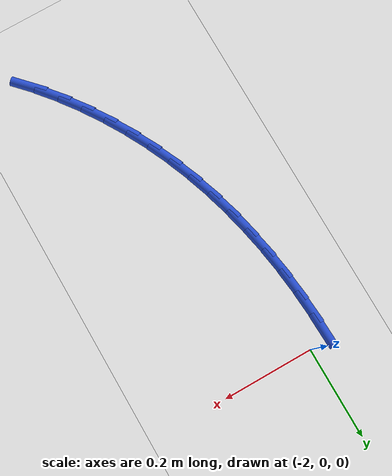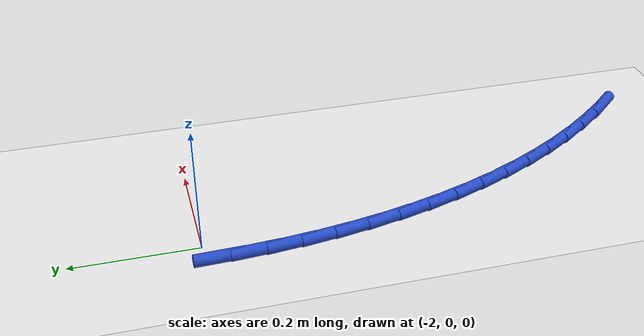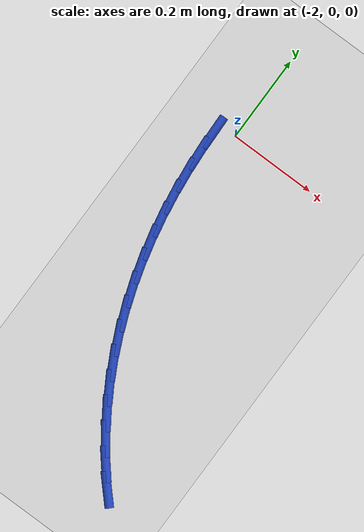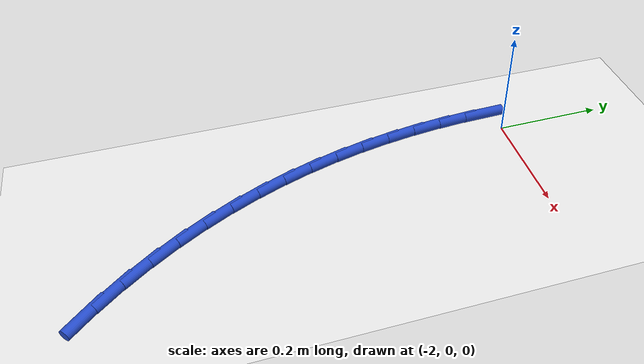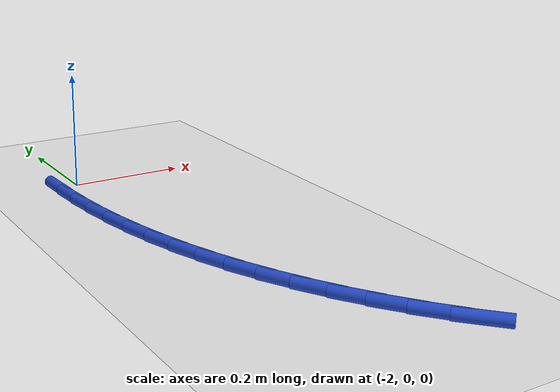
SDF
<sdf version="1.6">
 <world name="default">
  <model name="ground_plane">
   <static>1</static>
   <link name="link">
    <collision name="collision">
     <geometry><plane><normal>0 0 1</normal><size>100 100</size></plane></geometry>
     <surface><friction><ode><mu>100</mu><mu2>50</mu2></ode></friction></surface>
    </collision>
    <visual name="visual">
     <cast_shadows>0</cast_shadows>
     <geometry><plane><normal>0 0 1</normal><size>100 100</size></plane></geometry>
     <material>
      <script><uri>file://media/materials/scripts/gazebo.material</uri><name>Gazebo/WhiteGlow</name></script>
     </material>
    </visual>
   </link>
  </model>
  <model name="line">
   <link name="link_60">
    <pose>-2.0421835619305737 -0.0218428431717213 0.01 0 1.57 -1.5364353345822712</pose>
    <collision name="collision">
     <geometry><cylinder><radius>0.01</radius><length>0.08</length></cylinder></geometry>
    </collision>
    <visual name="visual">
     <material>
      <script><name>Gazebo/Blue</name><uri>file://media/materials/scripts/gazebo.material</uri></script>
     </material>
     <geometry><cylinder><radius>0.01</radius><length>0.08</length></cylinder></geometry>
    </visual>
   </link>
   <link name="link_61">
    <pose>-2.040297844113137 -0.07670085209178246 0.01 0 1.57 -1.49704273864362</pose>
    <collision name="collision">
     <geometry><cylinder><radius>0.01</radius><length>0.08</length></cylinder></geometry>
    </collision>
    <visual name="visual">
     <material>
      <script><name>Gazebo/Blue</name><uri>file://media/materials/scripts/gazebo.material</uri></script>
     </material>
     <geometry><cylinder><radius>0.01</radius><length>0.08</length></cylinder></geometry>
    </visual>
   </link>
   <link name="link_62">
    <pose>-2.0362647465696653 -0.13128507219147836 0.01 0 1.57 -1.4564170986292473</pose>
    <collision name="collision">
     <geometry><cylinder><radius>0.01</radius><length>0.08</length></cylinder></geometry>
    </collision>
    <visual name="visual">
     <material>
      <script><name>Gazebo/Blue</name><uri>file://media/materials/scripts/gazebo.material</uri></script>
     </material>
     <geometry><cylinder><radius>0.01</radius><length>0.08</length></cylinder></geometry>
    </visual>
   </link>
   <link name="link_63">
    <pose>-2.0300359076498986 -0.18550516220599242 0.01 0 1.57 -1.4144914595809464</pose>
    <collision name="collision">
     <geometry><cylinder><radius>0.01</radius><length>0.08</length></cylinder></geometry>
    </collision>
    <visual name="visual">
     <material>
      <script><name>Gazebo/Blue</name><uri>file://media/materials/scripts/gazebo.material</uri></script>
     </material>
     <geometry><cylinder><radius>0.01</radius><length>0.08</length></cylinder></geometry>
    </visual>
   </link>
   <link name="link_64">
    <pose>-2.021562965703574 -0.2392707808705057 0.01 0 1.57 -1.3712111930286497</pose>
    <collision name="collision">
     <geometry><cylinder><radius>0.01</radius><length>0.08</length></cylinder></geometry>
    </collision>
    <visual name="visual">
     <material>
      <script><name>Gazebo/Blue</name><uri>file://media/materials/scripts/gazebo.material</uri></script>
     </material>
     <geometry><cylinder><radius>0.01</radius><length>0.08</length></cylinder></geometry>
    </visual>
   </link>
   <link name="link_65">
    <pose>-2.0107975590804323 -0.2924915869202018 0.01 0 1.57 -1.3265369349799083</pose>
    <collision name="collision">
     <geometry><cylinder><radius>0.01</radius><length>0.08</length></cylinder></geometry>
    </collision>
    <visual name="visual">
     <material>
      <script><name>Gazebo/Blue</name><uri>file://media/materials/scripts/gazebo.material</uri></script>
     </material>
     <geometry><cylinder><radius>0.01</radius><length>0.08</length></cylinder></geometry>
    </visual>
   </link>
   <link name="link_66">
    <pose>-1.99769132613021 -0.3450772390902639 0.01 0 1.57 -1.2804477875442704</pose>
    <collision name="collision">
     <geometry><cylinder><radius>0.01</radius><length>0.08</length></cylinder></geometry>
    </collision>
    <visual name="visual">
     <material>
      <script><name>Gazebo/Blue</name><uri>file://media/materials/scripts/gazebo.material</uri></script>
     </material>
     <geometry><cylinder><radius>0.01</radius><length>0.08</length></cylinder></geometry>
    </visual>
   </link>
   <link name="link_67">
    <pose>-1.9821959052026485 -0.3969373961158733 0.01 0 1.57 -1.232944652979665</pose>
    <collision name="collision">
     <geometry><cylinder><radius>0.01</radius><length>0.08</length></cylinder></geometry>
    </collision>
    <visual name="visual">
     <material>
      <script><name>Gazebo/Blue</name><uri>file://media/materials/scripts/gazebo.material</uri></script>
     </material>
     <geometry><cylinder><radius>0.01</radius><length>0.08</length></cylinder></geometry>
    </visual>
   </link>
   <link name="link_68">
    <pose>-1.9642629346474842 -0.4479817167322135 0.01 0 1.57 -1.1840535102107554</pose>
    <collision name="collision">
     <geometry><cylinder><radius>0.01</radius><length>0.08</length></cylinder></geometry>
    </collision>
    <visual name="visual">
     <material>
      <script><name>Gazebo/Blue</name><uri>file://media/materials/scripts/gazebo.material</uri></script>
     </material>
     <geometry><cylinder><radius>0.01</radius><length>0.08</length></cylinder></geometry>
    </visual>
   </link>
   <link name="link_69">
    <pose>-1.943844052814458 -0.498119859674467 0.01 0 1.57 -1.1338283845030774</pose>
    <collision name="collision">
     <geometry><cylinder><radius>0.01</radius><length>0.08</length></cylinder></geometry>
    </collision>
    <visual name="visual">
     <material>
      <script><name>Gazebo/Blue</name><uri>file://media/materials/scripts/gazebo.material</uri></script>
     </material>
     <geometry><cylinder><radius>0.01</radius><length>0.08</length></cylinder></geometry>
    </visual>
   </link>
   <link name="link_70">
    <pose>-1.9208908980616437 -0.5472614836721037 0.01 0 1.57 -1.08256803882214</pose>
    <collision name="collision">
     <geometry><cylinder><radius>0.01</radius><length>0.08</length></cylinder></geometry>
    </collision>
    <visual name="visual">
     <material>
      <script><name>Gazebo/Blue</name><uri>file://media/materials/scripts/gazebo.material</uri></script>
     </material>
     <geometry><cylinder><radius>0.01</radius><length>0.08</length></cylinder></geometry>
    </visual>
   </link>
   <link name="link_71">
    <pose>-1.8953758724112078 -0.5953020182782508 0.01 0 1.57 -1.0310727611489976</pose>
    <collision name="collision">
     <geometry><cylinder><radius>0.01</radius><length>0.08</length></cylinder></geometry>
    </collision>
    <visual name="visual">
     <material>
      <script><name>Gazebo/Blue</name><uri>file://media/materials/scripts/gazebo.material</uri></script>
     </material>
     <geometry><cylinder><radius>0.01</radius><length>0.08</length></cylinder></geometry>
    </visual>
   </link>
   <link name="link_72">
    <pose>-1.8673526013210187 -0.6420812312618407 0.01 0 1.57 -0.9793105991770824</pose>
    <collision name="collision">
     <geometry><cylinder><radius>0.01</radius><length>0.08</length></cylinder></geometry>
    </collision>
    <visual name="visual">
     <material>
      <script><name>Gazebo/Blue</name><uri>file://media/materials/scripts/gazebo.material</uri></script>
     </material>
     <geometry><cylinder><radius>0.01</radius><length>0.08</length></cylinder></geometry>
    </visual>
   </link>
   <link name="link_73">
    <pose>-1.8368945683524913 -0.6874252817890099 0.01 0 1.57 -0.9270314874802343</pose>
    <collision name="collision">
     <geometry><cylinder><radius>0.01</radius><length>0.08</length></cylinder></geometry>
    </collision>
    <visual name="visual">
     <material>
      <script><name>Gazebo/Blue</name><uri>file://media/materials/scripts/gazebo.material</uri></script>
     </material>
     <geometry><cylinder><radius>0.01</radius><length>0.08</length></cylinder></geometry>
    </visual>
   </link>
   <link name="link_74">
    <pose>-1.8040752570670417 -0.7311603290258951 0.01 0 1.57 -0.8739945701712459</pose>
    <collision name="collision">
     <geometry><cylinder><radius>0.01</radius><length>0.08</length></cylinder></geometry>
    </collision>
    <visual name="visual">
     <material>
      <script><name>Gazebo/Blue</name><uri>file://media/materials/scripts/gazebo.material</uri></script>
     </material>
     <geometry><cylinder><radius>0.01</radius><length>0.08</length></cylinder></geometry>
    </visual>
   </link>
   <link name="link_75">
    <pose>-1.768968151026086 -0.7731125321386313 0.01 0 1.57 -0.8199706074739685</pose>
    <collision name="collision">
     <geometry><cylinder><radius>0.01</radius><length>0.08</length></cylinder></geometry>
    </collision>
    <visual name="visual">
     <material>
      <script><name>Gazebo/Blue</name><uri>file://media/materials/scripts/gazebo.material</uri></script>
     </material>
     <geometry><cylinder><radius>0.01</radius><length>0.08</length></cylinder></geometry>
    </visual>
   </link>
  </model>
 </world>
</sdf>
